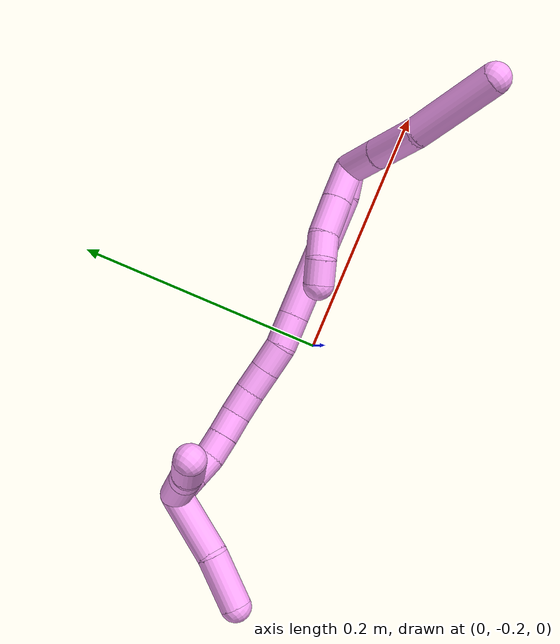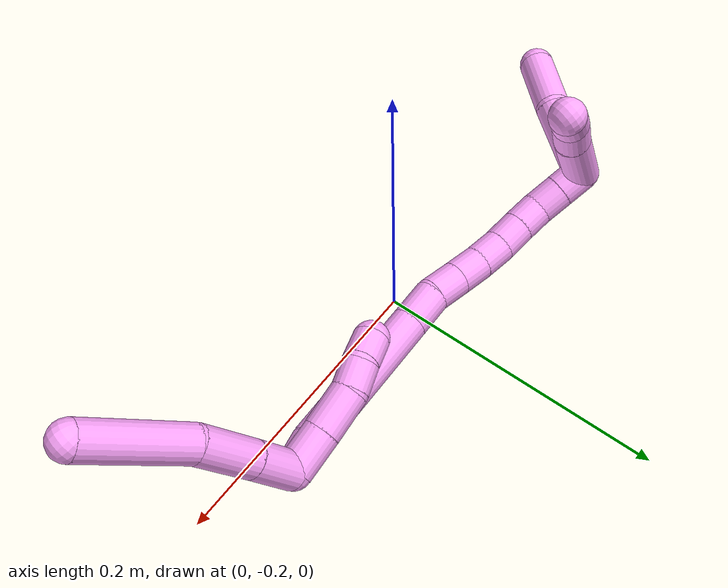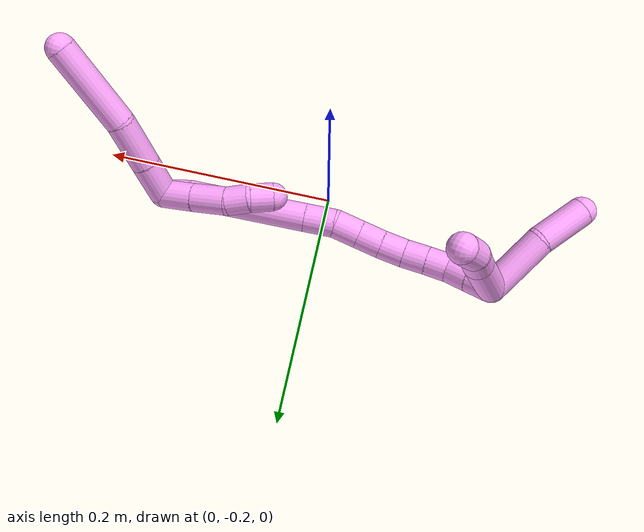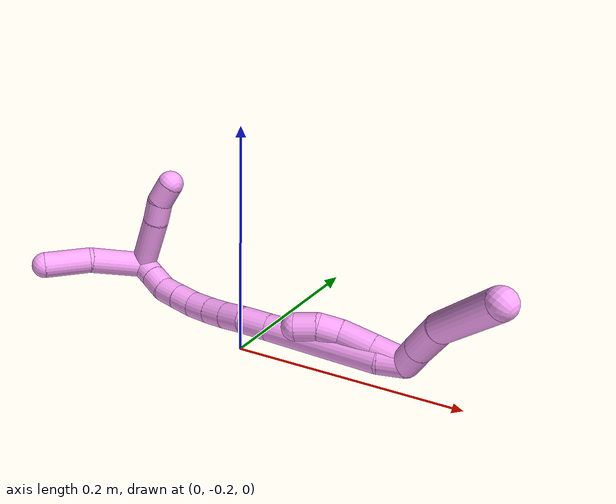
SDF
<sdf version="1.7">
 <world name="default">
  <model name="4">
   <static>0</static>
   <link name="4">
    <collision name="collision-cylinder-e_1_2_8">
     <pose>0.000728 0.015991 0.00466 -1.28725 0.043653 -0.032751</pose>
     <geometry><cylinder><radius>0.0125</radius><length>0.033344</length></cylinder></geometry>
     <surface>
      <friction><ode><mu>1.16</mu><mu2>1.16</mu2><slip1>0</slip1><slip2>0</slip2></ode></friction>
      <contact><ode><kp>1e+06</kp><kd>1</kd><max_vel>0</max_vel><min_depth>0.001</min_depth></ode></contact>
     </surface>
    </collision>
    <visual name="visual-cylinder-e_1_2_8">
     <pose>0.000728 0.015991 0.00466 -1.28725 0.043653 -0.032751</pose>
     <geometry><cylinder><radius>0.0125</radius><length>0.033344</length></cylinder></geometry>
     <material><ambient>1 0.65098 0.996078 1</ambient></material>
    </visual>
    <collision name="collision-cylinder-e_2_8_9">
     <pose>0.002039 0.052232 0.015861 -1.25834 0.027424 -0.019961</pose>
     <geometry><cylinder><radius>0.0125</radius><length>0.042577</length></cylinder></geometry>
     <surface>
      <friction><ode><mu>1.16</mu><mu2>1.16</mu2><slip1>0</slip1><slip2>0</slip2></ode></friction>
      <contact><ode><kp>1e+06</kp><kd>1</kd><max_vel>0</max_vel><min_depth>0.001</min_depth></ode></contact>
     </surface>
    </collision>
    <visual name="visual-cylinder-e_2_8_9">
     <pose>0.002039 0.052232 0.015861 -1.25834 0.027424 -0.019961</pose>
     <geometry><cylinder><radius>0.0125</radius><length>0.042577</length></cylinder></geometry>
     <material><ambient>1 0.65098 0.996078 1</ambient></material>
    </visual>
    <collision name="collision-cylinder-e_3_9_6">
     <pose>0.005021 0.104487 0.040893 -1.04689 0.064802 -0.037409</pose>
     <geometry><cylinder><radius>0.0125</radius><length>0.074079</length></cylinder></geometry>
     <surface>
      <friction><ode><mu>1.16</mu><mu2>1.16</mu2><slip1>0</slip1><slip2>0</slip2></ode></friction>
      <contact><ode><kp>1e+06</kp><kd>1</kd><max_vel>0</max_vel><min_depth>0.001</min_depth></ode></contact>
     </surface>
    </collision>
    <visual name="visual-cylinder-e_3_9_6">
     <pose>0.005021 0.104487 0.040893 -1.04689 0.064802 -0.037409</pose>
     <geometry><cylinder><radius>0.0125</radius><length>0.074079</length></cylinder></geometry>
     <material><ambient>1 0.65098 0.996078 1</ambient></material>
    </visual>
    <collision name="collision-cylinder-e_1_2_10">
     <pose>-0.005046 -0.000279 -0.013744 3.12126 -0.351815 -3.02732</pose>
     <geometry><cylinder><radius>0.0125</radius><length>0.029287</length></cylinder></geometry>
     <surface>
      <friction><ode><mu>1.16</mu><mu2>1.16</mu2><slip1>0</slip1><slip2>0</slip2></ode></friction>
      <contact><ode><kp>1e+06</kp><kd>1</kd><max_vel>0</max_vel><min_depth>0.001</min_depth></ode></contact>
     </surface>
    </collision>
    <visual name="visual-cylinder-e_1_2_10">
     <pose>-0.005046 -0.000279 -0.013744 3.12126 -0.351815 -3.02732</pose>
     <geometry><cylinder><radius>0.0125</radius><length>0.029287</length></cylinder></geometry>
     <material><ambient>1 0.65098 0.996078 1</ambient></material>
    </visual>
    <collision name="collision-cylinder-e_2_10_11">
     <pose>-0.015624 -0.000622 -0.041757 3.1372 -0.369793 -3.11812</pose>
     <geometry><cylinder><radius>0.0125</radius><length>0.03061</length></cylinder></geometry>
     <surface>
      <friction><ode><mu>1.16</mu><mu2>1.16</mu2><slip1>0</slip1><slip2>0</slip2></ode></friction>
      <contact><ode><kp>1e+06</kp><kd>1</kd><max_vel>0</max_vel><min_depth>0.001</min_depth></ode></contact>
     </surface>
    </collision>
    <visual name="visual-cylinder-e_2_10_11">
     <pose>-0.015624 -0.000622 -0.041757 3.1372 -0.369793 -3.11812</pose>
     <geometry><cylinder><radius>0.0125</radius><length>0.03061</length></cylinder></geometry>
     <material><ambient>1 0.65098 0.996078 1</ambient></material>
    </visual>
    <collision name="collision-cylinder-e_3_11_12">
     <pose>-0.026876 0.000219 -0.06422 -3.03184 -0.606714 2.79415</pose>
     <geometry><cylinder><radius>0.0125</radius><length>0.020066</length></cylinder></geometry>
     <surface>
      <friction><ode><mu>1.16</mu><mu2>1.16</mu2><slip1>0</slip1><slip2>0</slip2></ode></friction>
      <contact><ode><kp>1e+06</kp><kd>1</kd><max_vel>0</max_vel><min_depth>0.001</min_depth></ode></contact>
     </surface>
    </collision>
    <visual name="visual-cylinder-e_3_11_12">
     <pose>-0.026876 0.000219 -0.06422 -3.03184 -0.606714 2.79415</pose>
     <geometry><cylinder><radius>0.0125</radius><length>0.020066</length></cylinder></geometry>
     <material><ambient>1 0.65098 0.996078 1</ambient></material>
    </visual>
    <collision name="collision-cylinder-e_4_12_5">
     <pose>-0.039478 -0.000625 -0.079482 2.89936 -0.757193 -2.54774</pose>
     <geometry><cylinder><radius>0.0125</radius><length>0.020038</length></cylinder></geometry>
     <surface>
      <friction><ode><mu>1.16</mu><mu2>1.16</mu2><slip1>0</slip1><slip2>0</slip2></ode></friction>
      <contact><ode><kp>1e+06</kp><kd>1</kd><max_vel>0</max_vel><min_depth>0.001</min_depth></ode></contact>
     </surface>
    </collision>
    <visual name="visual-cylinder-e_4_12_5">
     <pose>-0.039478 -0.000625 -0.079482 2.89936 -0.757193 -2.54774</pose>
     <geometry><cylinder><radius>0.0125</radius><length>0.020038</length></cylinder></geometry>
     <material><ambient>1 0.65098 0.996078 1</ambient></material>
    </visual>
    <collision name="collision-cylinder-e_1_2_13">
     <pose>-0.006648 -0.001767 -0.009077 2.94932 -0.623324 -2.55991</pose>
     <geometry><cylinder><radius>0.0125</radius><length>0.022778</length></cylinder></geometry>
     <surface>
      <friction><ode><mu>1.16</mu><mu2>1.16</mu2><slip1>0</slip1><slip2>0</slip2></ode></friction>
      <contact><ode><kp>1e+06</kp><kd>1</kd><max_vel>0</max_vel><min_depth>0.001</min_depth></ode></contact>
     </surface>
    </collision>
    <visual name="visual-cylinder-e_1_2_13">
     <pose>-0.006648 -0.001767 -0.009077 2.94932 -0.623324 -2.55991</pose>
     <geometry><cylinder><radius>0.0125</radius><length>0.022778</length></cylinder></geometry>
     <material><ambient>1 0.65098 0.996078 1</ambient></material>
    </visual>
    <collision name="collision-cylinder-e_2_13_14">
     <pose>-0.034322 -0.013156 -0.064896 2.93858 -0.414993 -2.24036</pose>
     <geometry><cylinder><radius>0.0125</radius><length>0.104299</length></cylinder></geometry>
     <surface>
      <friction><ode><mu>1.16</mu><mu2>1.16</mu2><slip1>0</slip1><slip2>0</slip2></ode></friction>
      <contact><ode><kp>1e+06</kp><kd>1</kd><max_vel>0</max_vel><min_depth>0.001</min_depth></ode></contact>
     </surface>
    </collision>
    <visual name="visual-cylinder-e_2_13_14">
     <pose>-0.034322 -0.013156 -0.064896 2.93858 -0.414993 -2.24036</pose>
     <geometry><cylinder><radius>0.0125</radius><length>0.104299</length></cylinder></geometry>
     <material><ambient>1 0.65098 0.996078 1</ambient></material>
    </visual>
    <collision name="collision-cylinder-e_3_14_15">
     <pose>-0.060686 -0.025169 -0.123417 2.94128 -0.417991 -2.25663</pose>
     <geometry><cylinder><radius>0.0125</radius><length>0.0263</length></cylinder></geometry>
     <surface>
      <friction><ode><mu>1.16</mu><mu2>1.16</mu2><slip1>0</slip1><slip2>0</slip2></ode></friction>
      <contact><ode><kp>1e+06</kp><kd>1</kd><max_vel>0</max_vel><min_depth>0.001</min_depth></ode></contact>
     </surface>
    </collision>
    <visual name="visual-cylinder-e_3_14_15">
     <pose>-0.060686 -0.025169 -0.123417 2.94128 -0.417991 -2.25663</pose>
     <geometry><cylinder><radius>0.0125</radius><length>0.0263</length></cylinder></geometry>
     <material><ambient>1 0.65098 0.996078 1</ambient></material>
    </visual>
    <collision name="collision-cylinder-e_4_15_16">
     <pose>-0.069219 -0.032028 -0.145037 2.71545 -0.287467 -1.17918</pose>
     <geometry><cylinder><radius>0.0125</radius><length>0.022543</length></cylinder></geometry>
     <surface>
      <friction><ode><mu>1.16</mu><mu2>1.16</mu2><slip1>0</slip1><slip2>0</slip2></ode></friction>
      <contact><ode><kp>1e+06</kp><kd>1</kd><max_vel>0</max_vel><min_depth>0.001</min_depth></ode></contact>
     </surface>
    </collision>
    <visual name="visual-cylinder-e_4_15_16">
     <pose>-0.069219 -0.032028 -0.145037 2.71545 -0.287467 -1.17918</pose>
     <geometry><cylinder><radius>0.0125</radius><length>0.022543</length></cylinder></geometry>
     <material><ambient>1 0.65098 0.996078 1</ambient></material>
    </visual>
    <collision name="collision-cylinder-e_5_16_17">
     <pose>-0.075181 -0.040352 -0.164493 2.76017 -0.260902 -1.19377</pose>
     <geometry><cylinder><radius>0.0125</radius><length>0.021443</length></cylinder></geometry>
     <surface>
      <friction><ode><mu>1.16</mu><mu2>1.16</mu2><slip1>0</slip1><slip2>0</slip2></ode></friction>
      <contact><ode><kp>1e+06</kp><kd>1</kd><max_vel>0</max_vel><min_depth>0.001</min_depth></ode></contact>
     </surface>
    </collision>
    <visual name="visual-cylinder-e_5_16_17">
     <pose>-0.075181 -0.040352 -0.164493 2.76017 -0.260902 -1.19377</pose>
     <geometry><cylinder><radius>0.0125</radius><length>0.021443</length></cylinder></geometry>
     <material><ambient>1 0.65098 0.996078 1</ambient></material>
    </visual>
    <collision name="collision-cylinder-e_6_17_18">
     <pose>-0.080802 -0.047297 -0.183987 2.8386 -0.269156 -1.45105</pose>
     <geometry><cylinder><radius>0.0125</radius><length>0.021476</length></cylinder></geometry>
     <surface>
      <friction><ode><mu>1.16</mu><mu2>1.16</mu2><slip1>0</slip1><slip2>0</slip2></ode></friction>
      <contact><ode><kp>1e+06</kp><kd>1</kd><max_vel>0</max_vel><min_depth>0.001</min_depth></ode></contact>
     </surface>
    </collision>
    <visual name="visual-cylinder-e_6_17_18">
     <pose>-0.080802 -0.047297 -0.183987 2.8386 -0.269156 -1.45105</pose>
     <geometry><cylinder><radius>0.0125</radius><length>0.021476</length></cylinder></geometry>
     <material><ambient>1 0.65098 0.996078 1</ambient></material>
    </visual>
    <collision name="collision-cylinder-e_7_18_19">
     <pose>-0.086229 -0.051935 -0.203603 2.98372 -0.255202 -2.03659</pose>
     <geometry><cylinder><radius>0.0125</radius><length>0.020378</length></cylinder></geometry>
     <surface>
      <friction><ode><mu>1.16</mu><mu2>1.16</mu2><slip1>0</slip1><slip2>0</slip2></ode></friction>
      <contact><ode><kp>1e+06</kp><kd>1</kd><max_vel>0</max_vel><min_depth>0.001</min_depth></ode></contact>
     </surface>
    </collision>
    <visual name="visual-cylinder-e_7_18_19">
     <pose>-0.086229 -0.051935 -0.203603 2.98372 -0.255202 -2.03659</pose>
     <geometry><cylinder><radius>0.0125</radius><length>0.020378</length></cylinder></geometry>
     <material><ambient>1 0.65098 0.996078 1</ambient></material>
    </visual>
    <collision name="collision-cylinder-e_8_19_20">
     <pose>-0.091047 -0.055095 -0.223041 2.97717 -0.224506 -1.87918</pose>
     <geometry><cylinder><radius>0.0125</radius><length>0.020174</length></cylinder></geometry>
     <surface>
      <friction><ode><mu>1.16</mu><mu2>1.16</mu2><slip1>0</slip1><slip2>0</slip2></ode></friction>
      <contact><ode><kp>1e+06</kp><kd>1</kd><max_vel>0</max_vel><min_depth>0.001</min_depth></ode></contact>
     </surface>
    </collision>
    <visual name="visual-cylinder-e_8_19_20">
     <pose>-0.091047 -0.055095 -0.223041 2.97717 -0.224506 -1.87918</pose>
     <geometry><cylinder><radius>0.0125</radius><length>0.020174</length></cylinder></geometry>
     <material><ambient>1 0.65098 0.996078 1</ambient></material>
    </visual>
    <collision name="collision-cylinder-e_9_20_21">
     <pose>-0.093044 -0.056794 -0.242822 3.1327 0.024658 2.44902</pose>
     <geometry><cylinder><radius>0.0125</radius><length>0.020168</length></cylinder></geometry>
     <surface>
      <friction><ode><mu>1.16</mu><mu2>1.16</mu2><slip1>0</slip1><slip2>0</slip2></ode></friction>
      <contact><ode><kp>1e+06</kp><kd>1</kd><max_vel>0</max_vel><min_depth>0.001</min_depth></ode></contact>
     </surface>
    </collision>
    <visual name="visual-cylinder-e_9_20_21">
     <pose>-0.093044 -0.056794 -0.242822 3.1327 0.024658 2.44902</pose>
     <geometry><cylinder><radius>0.0125</radius><length>0.020168</length></cylinder></geometry>
     <material><ambient>1 0.65098 0.996078 1</ambient></material>
    </visual>
    <collision name="collision-cylinder-e_10_21_1">
     <pose>-0.092672 -0.057118 -0.263121 3.11868 0.012027 0.966652</pose>
     <geometry><cylinder><radius>0.0125</radius><length>0.020442</length></cylinder></geometry>
     <surface>
      <friction><ode><mu>1.16</mu><mu2>1.16</mu2><slip1>0</slip1><slip2>0</slip2></ode></friction>
      <contact><ode><kp>1e+06</kp><kd>1</kd><max_vel>0</max_vel><min_depth>0.001</min_depth></ode></contact>
     </surface>
    </collision>
    <visual name="visual-cylinder-e_10_21_1">
     <pose>-0.092672 -0.057118 -0.263121 3.11868 0.012027 0.966652</pose>
     <geometry><cylinder><radius>0.0125</radius><length>0.020442</length></cylinder></geometry>
     <material><ambient>1 0.65098 0.996078 1</ambient></material>
    </visual>
    <collision name="collision-cylinder-e_1_1_22">
     <pose>-0.081209 -0.031751 -0.273151 -1.56347 0.416963 -0.414007</pose>
     <geometry><cylinder><radius>0.0125</radius><length>0.056003</length></cylinder></geometry>
     <surface>
      <friction><ode><mu>1.16</mu><mu2>1.16</mu2><slip1>0</slip1><slip2>0</slip2></ode></friction>
      <contact><ode><kp>1e+06</kp><kd>1</kd><max_vel>0</max_vel><min_depth>0.001</min_depth></ode></contact>
     </surface>
    </collision>
    <visual name="visual-cylinder-e_1_1_22">
     <pose>-0.081209 -0.031751 -0.273151 -1.56347 0.416963 -0.414007</pose>
     <geometry><cylinder><radius>0.0125</radius><length>0.056003</length></cylinder></geometry>
     <material><ambient>1 0.65098 0.996078 1</ambient></material>
    </visual>
    <collision name="collision-cylinder-e_2_22_23">
     <pose>-0.065401 0.003871 -0.273821 -1.6562 0.418068 -0.45417</pose>
     <geometry><cylinder><radius>0.0125</radius><length>0.02201</length></cylinder></geometry>
     <surface>
      <friction><ode><mu>1.16</mu><mu2>1.16</mu2><slip1>0</slip1><slip2>0</slip2></ode></friction>
      <contact><ode><kp>1e+06</kp><kd>1</kd><max_vel>0</max_vel><min_depth>0.001</min_depth></ode></contact>
     </surface>
    </collision>
    <visual name="visual-cylinder-e_2_22_23">
     <pose>-0.065401 0.003871 -0.273821 -1.6562 0.418068 -0.45417</pose>
     <geometry><cylinder><radius>0.0125</radius><length>0.02201</length></cylinder></geometry>
     <material><ambient>1 0.65098 0.996078 1</ambient></material>
    </visual>
    <collision name="collision-cylinder-e_3_23_4">
     <pose>-0.054664 0.022815 -0.27329 -1.41639 0.606806 -0.523902</pose>
     <geometry><cylinder><radius>0.0125</radius><length>0.021988</length></cylinder></geometry>
     <surface>
      <friction><ode><mu>1.16</mu><mu2>1.16</mu2><slip1>0</slip1><slip2>0</slip2></ode></friction>
      <contact><ode><kp>1e+06</kp><kd>1</kd><max_vel>0</max_vel><min_depth>0.001</min_depth></ode></contact>
     </surface>
    </collision>
    <visual name="visual-cylinder-e_3_23_4">
     <pose>-0.054664 0.022815 -0.27329 -1.41639 0.606806 -0.523902</pose>
     <geometry><cylinder><radius>0.0125</radius><length>0.021988</length></cylinder></geometry>
     <material><ambient>1 0.65098 0.996078 1</ambient></material>
    </visual>
    <collision name="collision-cylinder-e_1_1_24">
     <pose>-0.115855 -0.04499 -0.282764 -2.22223 -0.982507 1.64833</pose>
     <geometry><cylinder><radius>0.0125</radius><length>0.056029</length></cylinder></geometry>
     <surface>
      <friction><ode><mu>1.16</mu><mu2>1.16</mu2><slip1>0</slip1><slip2>0</slip2></ode></friction>
      <contact><ode><kp>1e+06</kp><kd>1</kd><max_vel>0</max_vel><min_depth>0.001</min_depth></ode></contact>
     </surface>
    </collision>
    <visual name="visual-cylinder-e_1_1_24">
     <pose>-0.115855 -0.04499 -0.282764 -2.22223 -0.982507 1.64833</pose>
     <geometry><cylinder><radius>0.0125</radius><length>0.056029</length></cylinder></geometry>
     <material><ambient>1 0.65098 0.996078 1</ambient></material>
    </visual>
    <collision name="collision-cylinder-e_2_24_3">
     <pose>-0.159228 -0.029104 -0.30045 -2.73837 -1.15008 2.53061</pose>
     <geometry><cylinder><radius>0.0125</radius><length>0.043971</length></cylinder></geometry>
     <surface>
      <friction><ode><mu>1.16</mu><mu2>1.16</mu2><slip1>0</slip1><slip2>0</slip2></ode></friction>
      <contact><ode><kp>1e+06</kp><kd>1</kd><max_vel>0</max_vel><min_depth>0.001</min_depth></ode></contact>
     </surface>
    </collision>
    <visual name="visual-cylinder-e_2_24_3">
     <pose>-0.159228 -0.029104 -0.30045 -2.73837 -1.15008 2.53061</pose>
     <geometry><cylinder><radius>0.0125</radius><length>0.043971</length></cylinder></geometry>
     <material><ambient>1 0.65098 0.996078 1</ambient></material>
    </visual>
    <collision name="collision-sphere-3">
     <pose>-0.179296 -0.02558 -0.308709 0 -0 0</pose>
     <geometry><sphere><radius>0.0125</radius></sphere></geometry>
     <surface>
      <friction><ode><mu>1.16</mu><mu2>1.16</mu2><slip1>0</slip1><slip2>0</slip2></ode></friction>
      <contact><ode><kp>1e+06</kp><kd>1</kd><max_vel>0</max_vel><min_depth>0.001</min_depth></ode></contact>
     </surface>
    </collision>
    <visual name="visual-sphere-3">
     <pose>-0.179296 -0.02558 -0.308709 0 -0 0</pose>
     <geometry><sphere><radius>0.0125</radius></sphere></geometry>
     <material><ambient>1 0.65098 0.996078 1</ambient></material>
    </visual>
    <collision name="collision-sphere-24">
     <pose>-0.13916 -0.032627 -0.292191 0 -0 0</pose>
     <geometry><sphere><radius>0.0125</radius></sphere></geometry>
     <surface>
      <friction><ode><mu>1.16</mu><mu2>1.16</mu2><slip1>0</slip1><slip2>0</slip2></ode></friction>
      <contact><ode><kp>1e+06</kp><kd>1</kd><max_vel>0</max_vel><min_depth>0.001</min_depth></ode></contact>
     </surface>
    </collision>
    <visual name="visual-sphere-24">
     <pose>-0.13916 -0.032627 -0.292191 0 -0 0</pose>
     <geometry><sphere><radius>0.0125</radius></sphere></geometry>
     <material><ambient>1 0.65098 0.996078 1</ambient></material>
    </visual>
    <collision name="collision-sphere-4">
     <pose>-0.048395 0.031739 -0.271901 0 -0 0</pose>
     <geometry><sphere><radius>0.0125</radius></sphere></geometry>
     <surface>
      <friction><ode><mu>1.16</mu><mu2>1.16</mu2><slip1>0</slip1><slip2>0</slip2></ode></friction>
      <contact><ode><kp>1e+06</kp><kd>1</kd><max_vel>0</max_vel><min_depth>0.001</min_depth></ode></contact>
     </surface>
    </collision>
    <visual name="visual-sphere-4">
     <pose>-0.048395 0.031739 -0.271901 0 -0 0</pose>
     <geometry><sphere><radius>0.0125</radius></sphere></geometry>
     <material><ambient>1 0.65098 0.996078 1</ambient></material>
    </visual>
    <collision name="collision-sphere-23">
     <pose>-0.060933 0.013892 -0.274679 0 -0 0</pose>
     <geometry><sphere><radius>0.0125</radius></sphere></geometry>
     <surface>
      <friction><ode><mu>1.16</mu><mu2>1.16</mu2><slip1>0</slip1><slip2>0</slip2></ode></friction>
      <contact><ode><kp>1e+06</kp><kd>1</kd><max_vel>0</max_vel><min_depth>0.001</min_depth></ode></contact>
     </surface>
    </collision>
    <visual name="visual-sphere-23">
     <pose>-0.060933 0.013892 -0.274679 0 -0 0</pose>
     <geometry><sphere><radius>0.0125</radius></sphere></geometry>
     <material><ambient>1 0.65098 0.996078 1</ambient></material>
    </visual>
    <collision name="collision-sphere-22">
     <pose>-0.069869 -0.006149 -0.272963 0 -0 0</pose>
     <geometry><sphere><radius>0.0125</radius></sphere></geometry>
     <surface>
      <friction><ode><mu>1.16</mu><mu2>1.16</mu2><slip1>0</slip1><slip2>0</slip2></ode></friction>
      <contact><ode><kp>1e+06</kp><kd>1</kd><max_vel>0</max_vel><min_depth>0.001</min_depth></ode></contact>
     </surface>
    </collision>
    <visual name="visual-sphere-22">
     <pose>-0.069869 -0.006149 -0.272963 0 -0 0</pose>
     <geometry><sphere><radius>0.0125</radius></sphere></geometry>
     <material><ambient>1 0.65098 0.996078 1</ambient></material>
    </visual>
    <collision name="collision-sphere-1">
     <pose>-0.09255 -0.057352 -0.273338 0 -0 0</pose>
     <geometry><sphere><radius>0.0125</radius></sphere></geometry>
     <surface>
      <friction><ode><mu>1.16</mu><mu2>1.16</mu2><slip1>0</slip1><slip2>0</slip2></ode></friction>
      <contact><ode><kp>1e+06</kp><kd>1</kd><max_vel>0</max_vel><min_depth>0.001</min_depth></ode></contact>
     </surface>
    </collision>
    <visual name="visual-sphere-1">
     <pose>-0.09255 -0.057352 -0.273338 0 -0 0</pose>
     <geometry><sphere><radius>0.0125</radius></sphere></geometry>
     <material><ambient>1 0.65098 0.996078 1</ambient></material>
    </visual>
    <collision name="collision-sphere-21">
     <pose>-0.092795 -0.056884 -0.252903 0 -0 0</pose>
     <geometry><sphere><radius>0.0125</radius></sphere></geometry>
     <surface>
      <friction><ode><mu>1.16</mu><mu2>1.16</mu2><slip1>0</slip1><slip2>0</slip2></ode></friction>
      <contact><ode><kp>1e+06</kp><kd>1</kd><max_vel>0</max_vel><min_depth>0.001</min_depth></ode></contact>
     </surface>
    </collision>
    <visual name="visual-sphere-21">
     <pose>-0.092795 -0.056884 -0.252903 0 -0 0</pose>
     <geometry><sphere><radius>0.0125</radius></sphere></geometry>
     <material><ambient>1 0.65098 0.996078 1</ambient></material>
    </visual>
    <collision name="collision-sphere-11">
     <pose>-0.021155 -0.000684 -0.056028 0 -0 0</pose>
     <geometry><sphere><radius>0.0125</radius></sphere></geometry>
     <surface>
      <friction><ode><mu>1.16</mu><mu2>1.16</mu2><slip1>0</slip1><slip2>0</slip2></ode></friction>
      <contact><ode><kp>1e+06</kp><kd>1</kd><max_vel>0</max_vel><min_depth>0.001</min_depth></ode></contact>
     </surface>
    </collision>
    <visual name="visual-sphere-11">
     <pose>-0.021155 -0.000684 -0.056028 0 -0 0</pose>
     <geometry><sphere><radius>0.0125</radius></sphere></geometry>
     <material><ambient>1 0.65098 0.996078 1</ambient></material>
    </visual>
    <collision name="collision-sphere-10">
     <pose>-0.010092 -0.000559 -0.027487 0 -0 0</pose>
     <geometry><sphere><radius>0.0125</radius></sphere></geometry>
     <surface>
      <friction><ode><mu>1.16</mu><mu2>1.16</mu2><slip1>0</slip1><slip2>0</slip2></ode></friction>
      <contact><ode><kp>1e+06</kp><kd>1</kd><max_vel>0</max_vel><min_depth>0.001</min_depth></ode></contact>
     </surface>
    </collision>
    <visual name="visual-sphere-10">
     <pose>-0.010092 -0.000559 -0.027487 0 -0 0</pose>
     <geometry><sphere><radius>0.0125</radius></sphere></geometry>
     <material><ambient>1 0.65098 0.996078 1</ambient></material>
    </visual>
    <collision name="collision-sphere-6">
     <pose>0.00742 0.136491 0.059384 0 -0 0</pose>
     <geometry><sphere><radius>0.0125</radius></sphere></geometry>
     <surface>
      <friction><ode><mu>1.16</mu><mu2>1.16</mu2><slip1>0</slip1><slip2>0</slip2></ode></friction>
      <contact><ode><kp>1e+06</kp><kd>1</kd><max_vel>0</max_vel><min_depth>0.001</min_depth></ode></contact>
     </surface>
    </collision>
    <visual name="visual-sphere-6">
     <pose>0.00742 0.136491 0.059384 0 -0 0</pose>
     <geometry><sphere><radius>0.0125</radius></sphere></geometry>
     <material><ambient>1 0.65098 0.996078 1</ambient></material>
    </visual>
    <collision name="collision-sphere-9">
     <pose>0.002623 0.072483 0.022403 0 -0 0</pose>
     <geometry><sphere><radius>0.0125</radius></sphere></geometry>
     <surface>
      <friction><ode><mu>1.16</mu><mu2>1.16</mu2><slip1>0</slip1><slip2>0</slip2></ode></friction>
      <contact><ode><kp>1e+06</kp><kd>1</kd><max_vel>0</max_vel><min_depth>0.001</min_depth></ode></contact>
     </surface>
    </collision>
    <visual name="visual-sphere-9">
     <pose>0.002623 0.072483 0.022403 0 -0 0</pose>
     <geometry><sphere><radius>0.0125</radius></sphere></geometry>
     <material><ambient>1 0.65098 0.996078 1</ambient></material>
    </visual>
    <collision name="collision-sphere-2">
     <geometry><sphere><radius>0.0125</radius></sphere></geometry>
     <surface>
      <friction><ode><mu>1.16</mu><mu2>1.16</mu2><slip1>0</slip1><slip2>0</slip2></ode></friction>
      <contact><ode><kp>1e+06</kp><kd>1</kd><max_vel>0</max_vel><min_depth>0.001</min_depth></ode></contact>
     </surface>
    </collision>
    <visual name="visual-sphere-2">
     <geometry><sphere><radius>0.0125</radius></sphere></geometry>
     <material><ambient>1 0.65098 0.996078 1</ambient></material>
    </visual>
    <collision name="collision-sphere-19">
     <pose>-0.088801 -0.053485 -0.21334 0 -0 0</pose>
     <geometry><sphere><radius>0.0125</radius></sphere></geometry>
     <surface>
      <friction><ode><mu>1.16</mu><mu2>1.16</mu2><slip1>0</slip1><slip2>0</slip2></ode></friction>
      <contact><ode><kp>1e+06</kp><kd>1</kd><max_vel>0</max_vel><min_depth>0.001</min_depth></ode></contact>
     </surface>
    </collision>
    <visual name="visual-sphere-19">
     <pose>-0.088801 -0.053485 -0.21334 0 -0 0</pose>
     <geometry><sphere><radius>0.0125</radius></sphere></geometry>
     <material><ambient>1 0.65098 0.996078 1</ambient></material>
    </visual>
    <collision name="collision-sphere-8">
     <pose>0.001455 0.031982 0.00932 0 -0 0</pose>
     <geometry><sphere><radius>0.0125</radius></sphere></geometry>
     <surface>
      <friction><ode><mu>1.16</mu><mu2>1.16</mu2><slip1>0</slip1><slip2>0</slip2></ode></friction>
      <contact><ode><kp>1e+06</kp><kd>1</kd><max_vel>0</max_vel><min_depth>0.001</min_depth></ode></contact>
     </surface>
    </collision>
    <visual name="visual-sphere-8">
     <pose>0.001455 0.031982 0.00932 0 -0 0</pose>
     <geometry><sphere><radius>0.0125</radius></sphere></geometry>
     <material><ambient>1 0.65098 0.996078 1</ambient></material>
    </visual>
    <collision name="collision-sphere-12">
     <pose>-0.032596 0.001121 -0.072413 0 -0 0</pose>
     <geometry><sphere><radius>0.0125</radius></sphere></geometry>
     <surface>
      <friction><ode><mu>1.16</mu><mu2>1.16</mu2><slip1>0</slip1><slip2>0</slip2></ode></friction>
      <contact><ode><kp>1e+06</kp><kd>1</kd><max_vel>0</max_vel><min_depth>0.001</min_depth></ode></contact>
     </surface>
    </collision>
    <visual name="visual-sphere-12">
     <pose>-0.032596 0.001121 -0.072413 0 -0 0</pose>
     <geometry><sphere><radius>0.0125</radius></sphere></geometry>
     <material><ambient>1 0.65098 0.996078 1</ambient></material>
    </visual>
    <collision name="collision-sphere-5">
     <pose>-0.04636 -0.002372 -0.086551 0 -0 0</pose>
     <geometry><sphere><radius>0.0125</radius></sphere></geometry>
     <surface>
      <friction><ode><mu>1.16</mu><mu2>1.16</mu2><slip1>0</slip1><slip2>0</slip2></ode></friction>
      <contact><ode><kp>1e+06</kp><kd>1</kd><max_vel>0</max_vel><min_depth>0.001</min_depth></ode></contact>
     </surface>
    </collision>
    <visual name="visual-sphere-5">
     <pose>-0.04636 -0.002372 -0.086551 0 -0 0</pose>
     <geometry><sphere><radius>0.0125</radius></sphere></geometry>
     <material><ambient>1 0.65098 0.996078 1</ambient></material>
    </visual>
    <collision name="collision-sphere-13">
     <pose>-0.013296 -0.003534 -0.018153 0 -0 0</pose>
     <geometry><sphere><radius>0.0125</radius></sphere></geometry>
     <surface>
      <friction><ode><mu>1.16</mu><mu2>1.16</mu2><slip1>0</slip1><slip2>0</slip2></ode></friction>
      <contact><ode><kp>1e+06</kp><kd>1</kd><max_vel>0</max_vel><min_depth>0.001</min_depth></ode></contact>
     </surface>
    </collision>
    <visual name="visual-sphere-13">
     <pose>-0.013296 -0.003534 -0.018153 0 -0 0</pose>
     <geometry><sphere><radius>0.0125</radius></sphere></geometry>
     <material><ambient>1 0.65098 0.996078 1</ambient></material>
    </visual>
    <collision name="collision-sphere-14">
     <pose>-0.055348 -0.022778 -0.111639 0 -0 0</pose>
     <geometry><sphere><radius>0.0125</radius></sphere></geometry>
     <surface>
      <friction><ode><mu>1.16</mu><mu2>1.16</mu2><slip1>0</slip1><slip2>0</slip2></ode></friction>
      <contact><ode><kp>1e+06</kp><kd>1</kd><max_vel>0</max_vel><min_depth>0.001</min_depth></ode></contact>
     </surface>
    </collision>
    <visual name="visual-sphere-14">
     <pose>-0.055348 -0.022778 -0.111639 0 -0 0</pose>
     <geometry><sphere><radius>0.0125</radius></sphere></geometry>
     <material><ambient>1 0.65098 0.996078 1</ambient></material>
    </visual>
    <collision name="collision-sphere-15">
     <pose>-0.066024 -0.02756 -0.135194 0 -0 0</pose>
     <geometry><sphere><radius>0.0125</radius></sphere></geometry>
     <surface>
      <friction><ode><mu>1.16</mu><mu2>1.16</mu2><slip1>0</slip1><slip2>0</slip2></ode></friction>
      <contact><ode><kp>1e+06</kp><kd>1</kd><max_vel>0</max_vel><min_depth>0.001</min_depth></ode></contact>
     </surface>
    </collision>
    <visual name="visual-sphere-15">
     <pose>-0.066024 -0.02756 -0.135194 0 -0 0</pose>
     <geometry><sphere><radius>0.0125</radius></sphere></geometry>
     <material><ambient>1 0.65098 0.996078 1</ambient></material>
    </visual>
    <collision name="collision-sphere-16">
     <pose>-0.072415 -0.036496 -0.154879 0 -0 0</pose>
     <geometry><sphere><radius>0.0125</radius></sphere></geometry>
     <surface>
      <friction><ode><mu>1.16</mu><mu2>1.16</mu2><slip1>0</slip1><slip2>0</slip2></ode></friction>
      <contact><ode><kp>1e+06</kp><kd>1</kd><max_vel>0</max_vel><min_depth>0.001</min_depth></ode></contact>
     </surface>
    </collision>
    <visual name="visual-sphere-16">
     <pose>-0.072415 -0.036496 -0.154879 0 -0 0</pose>
     <geometry><sphere><radius>0.0125</radius></sphere></geometry>
     <material><ambient>1 0.65098 0.996078 1</ambient></material>
    </visual>
    <collision name="collision-sphere-17">
     <pose>-0.077946 -0.044208 -0.174107 0 -0 0</pose>
     <geometry><sphere><radius>0.0125</radius></sphere></geometry>
     <surface>
      <friction><ode><mu>1.16</mu><mu2>1.16</mu2><slip1>0</slip1><slip2>0</slip2></ode></friction>
      <contact><ode><kp>1e+06</kp><kd>1</kd><max_vel>0</max_vel><min_depth>0.001</min_depth></ode></contact>
     </surface>
    </collision>
    <visual name="visual-sphere-17">
     <pose>-0.077946 -0.044208 -0.174107 0 -0 0</pose>
     <geometry><sphere><radius>0.0125</radius></sphere></geometry>
     <material><ambient>1 0.65098 0.996078 1</ambient></material>
    </visual>
    <collision name="collision-sphere-18">
     <pose>-0.083657 -0.050385 -0.193867 0 -0 0</pose>
     <geometry><sphere><radius>0.0125</radius></sphere></geometry>
     <surface>
      <friction><ode><mu>1.16</mu><mu2>1.16</mu2><slip1>0</slip1><slip2>0</slip2></ode></friction>
      <contact><ode><kp>1e+06</kp><kd>1</kd><max_vel>0</max_vel><min_depth>0.001</min_depth></ode></contact>
     </surface>
    </collision>
    <visual name="visual-sphere-18">
     <pose>-0.083657 -0.050385 -0.193867 0 -0 0</pose>
     <geometry><sphere><radius>0.0125</radius></sphere></geometry>
     <material><ambient>1 0.65098 0.996078 1</ambient></material>
    </visual>
    <collision name="collision-sphere-20">
     <pose>-0.093293 -0.056705 -0.232742 0 -0 0</pose>
     <geometry><sphere><radius>0.0125</radius></sphere></geometry>
     <surface>
      <friction><ode><mu>1.16</mu><mu2>1.16</mu2><slip1>0</slip1><slip2>0</slip2></ode></friction>
      <contact><ode><kp>1e+06</kp><kd>1</kd><max_vel>0</max_vel><min_depth>0.001</min_depth></ode></contact>
     </surface>
    </collision>
    <visual name="visual-sphere-20">
     <pose>-0.093293 -0.056705 -0.232742 0 -0 0</pose>
     <geometry><sphere><radius>0.0125</radius></sphere></geometry>
     <material><ambient>1 0.65098 0.996078 1</ambient></material>
    </visual>
    <inertial>
     <pose>-0.053007 -0.00492 -0.12931 0 -0 0</pose>
     <mass>0.75</mass>
     <inertia>
      <ixx>-9.5e-05</ixx>
      <ixy>0</ixy>
      <ixz>0</ixz>
      <iyy>6.4e-05</iyy>
      <iyz>0</iyz>
      <izz>-1.7e-05</izz>
     </inertia>
    </inertial>
   </link>
   <pose>0.141923 -0.171249 0.012216 1.96755 -0.328122 1.11698</pose>
  </model>
 </world>
</sdf>
